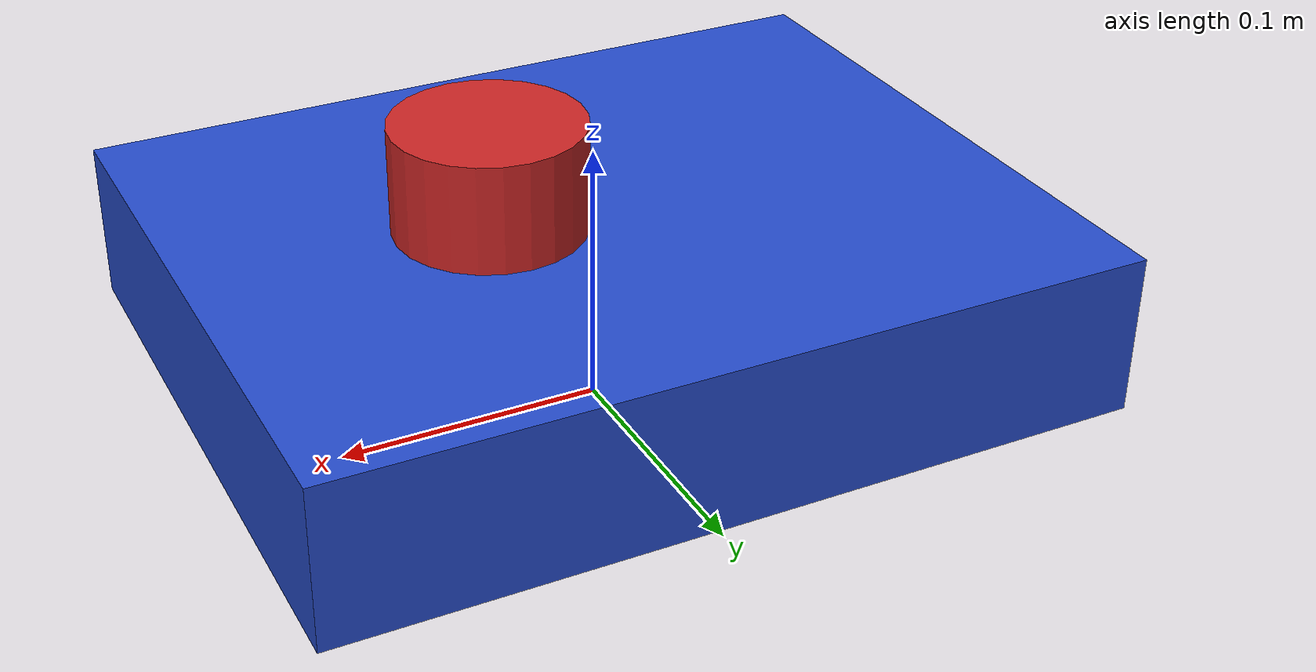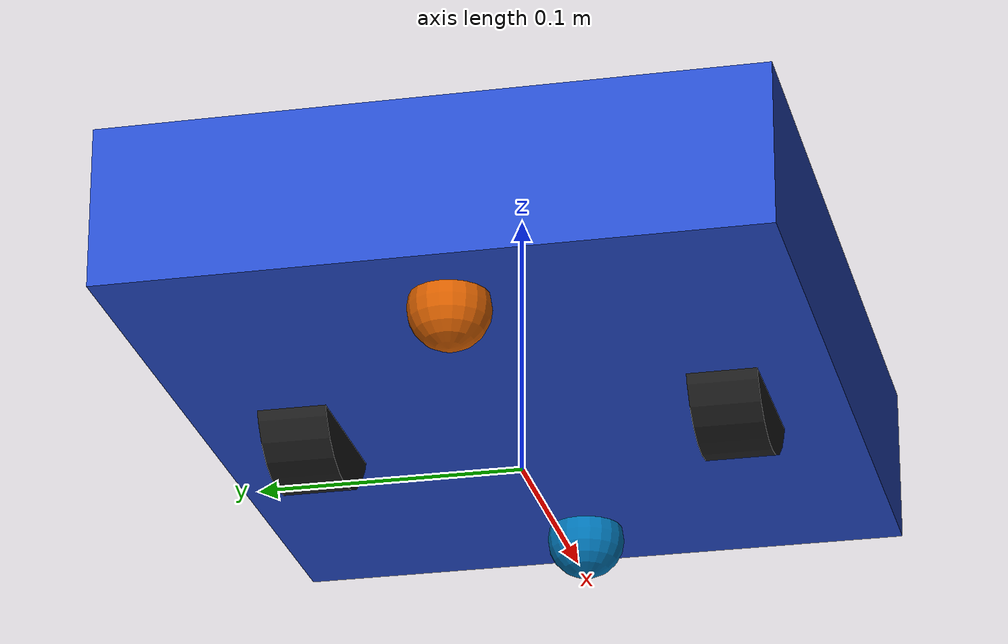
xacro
<?xml version="1.0"?>
<robot name="navbot" xmlns:xacro="http://www.ros.org/wiki/xacro">

  <!-- ① 模型本体：连杆 + 关节（仿真/真机共用） -->
  <xacro:include filename="$(find navbot_description)/urdf/navbot.xacro"/>

  <!-- ② 仿真挂载：差速插件 + 激光 + 关节状态（只有仿真需要）
          ★ 真机时把下面这一行注释掉即可，其余代码一字不动 -->
  <xacro:include filename="$(find navbot_description)/urdf/navbot.gazebo.xacro"/>

</robot>

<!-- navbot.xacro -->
<robot name="navbot" xmlns:xacro="http://www.ros.org/wiki/xacro">
    <link name="base_footprint"/>

    <joint name="base_joint" type="fixed">
        <parent link="base_footprint"/>
        <child link="base_link"/>
        <!-- base_footprint 贴地，base_link 再抬半个车厚 -->
        <origin xyz="0.0 0.0 0.05" rpy="0 0 0"/>
    </joint>

    <!-- 长方体惯量 -->
    <xacro:macro name="box_inertia" params="m x y z">
        <inertial>
        <origin xyz="0.0 0.0 0.0" rpy="0.0 0.0 0.0"/>
        <mass value="${m}"/>
        <inertia ixx="${m * (y*y + z*z) / 12}"
                 ixy="0.0" ixz="0.0" iyy="${m * (x*x + z*z) / 12}"
                 iyz="0.0" izz="${m * (x*x + y*y) / 12}"/>
        </inertial>
    </xacro:macro>

    <link name="base_link" >
            <visual>
            <geometry><box size="0.30 0.24 0.06"/></geometry>
        </visual>
        <collision>
            <geometry><box size="0.30 0.24 0.06"/></geometry>
        </collision>
        <xacro:box_inertia m="1.2" x="0.30" y="0.24" z="0.06"/>
    </link>

    <!-- 圆柱惯量，轴沿 Z -->
    <xacro:macro name="cyl_inertia" params="m r h">
        <inertial>
        <origin xyz="0.0 0.0 0.0" rpy="0.0 0.0 0.0"/>
        <mass value="${m}"/>
        <inertia ixx="${m * (3*r*r + h*h) / 12}"
                 ixy="0.0" ixz="0.0" iyy="${m * (3*r*r + h*h) / 12}"
                 iyz="0.0" izz="${m*r*r / 2}"/>
        </inertial>
    </xacro:macro>

    <xacro:macro name="wheel" params="prefix side" >
        <link name="${prefix}_wheel_link">
                <visual>
                    <!-- 以弧度为单位指定滚动、俯仰和偏航旋转。 -->
                    <!-- 格式：rpy="横滚 俯仰 偏航"（以空格分隔的值）
                    注意：旋转顺序为：偏航（Z轴）、俯仰（Y轴）、滚转（X轴） -->
                    <!-- 圆柱的默认轴沿 Z。但轮子要「横躺」着滚，轴得朝 Y。所以要绕 X 轴转 -90°。 -->
                    <origin rpy="-1.57079632679 0.0 0.0"/>
                    <geometry><cylinder radius="0.0325" length="0.026"/></geometry>
                </visual>
                <collision>
                    <origin rpy="-1.57079632679 0.0 0.0"/>
                    <geometry><cylinder radius="0.0325" length="0.026"/></geometry>
                </collision>
        <xacro:cyl_inertia m="0.15"  r="0.0325" h="0.026"/>
        </link>

        <joint name="${prefix}_wheel_joint" type="continuous">
                <parent link="base_link"/>
                <child link="${prefix}_wheel_link"/>
                <origin xyz="0.0 ${side * 0.16 / 2} -0.0175" rpy="0.0 0.0 0.0"/>
                <axis xyz="0.0 1.0 0.0"/>
                <limit effort="5.0" velocity="20.0"/>
        </joint>
    </xacro:macro>

    <xacro:wheel prefix="left" side="1"/>
    <xacro:wheel prefix="right" side="-1"/>

    <!-- 球惯量 -->
    <xacro:macro name="sphere_inertia" params="m r">
        <inertial>
        <origin xyz="0.0 0.0 0.0" rpy="0.0 0.0 0.0"/>
        <mass value="${m}"/>
        <inertia ixx="${2*m*r*r  / 5}"
                 ixy="0.0" ixz="0.0" iyy="${2*m*r*r  / 5}"
                 iyz="0.0" izz="${2*m*r*r  / 5}"/>
        </inertial>
    </xacro:macro>

    <!-- 前后万向球 -->
    <xacro:macro name="caster" params="prefix x_pos">
        <link name="${prefix}_caster_link">
                <visual>
                    <!-- 以弧度为单位指定滚动、俯仰和偏航旋转。 -->
                    <!-- 格式：rpy="横滚 俯仰 偏航"（以空格分隔的值）
                    注意：旋转顺序为：偏航（Z轴）、俯仰（Y轴）、滚转（X轴） -->
                    <!-- 球心离地 = 半径 0.015，那相对 base_link 的 z = ？前后位置 x_pos = ±0.115。 -->
                    <origin xyz="0.0 0.0 0.0" rpy="0.0 0.0 0.0"/>
                    <geometry><sphere radius="0.015" /></geometry>
                </visual>
                <collision>
                    <origin xyz="0.0 0.0 0.0" rpy="0.0 0.0 0.0"/>
                    <geometry><sphere radius="0.015"/></geometry>
                </collision>
        <xacro:sphere_inertia m="0.03" r="0.015"/>
        </link>

        <joint name="${prefix}_caster_joint" type="fixed">
                <parent link="base_link"/>
                <child link="${prefix}_caster_link"/>
                <origin xyz="${x_pos} 0 -0.035" rpy="0.0 0.0 0.0"/>
        </joint>
    </xacro:macro>

    <xacro:caster prefix="front" x_pos="0.115"/>
    <xacro:caster prefix="back"  x_pos="-0.115"/>

    <!-- 必须叫 laser_link（不是 lidar_link）：gazebo.xacro 里的雷达插件
         用 reference="laser_link" 挂接，改名会导致 TF 树断链 -->
    <link name="laser_link">

        <visual>
            <origin xyz="0.0 0.0 0.0"/>
            <geometry><cylinder radius="0.035" length="0.04"/></geometry>
        </visual>
        <collision>
            <origin xyz="0.0 0.0 0.0"/>
            <geometry><cylinder radius="0.035" length="0.04"/></geometry>
        </collision>

        <xacro:cyl_inertia m="0.10" r="0.035" h="0.04"/>
    </link>

    <joint name="laser_joint" type="fixed">
        <parent link="base_link"/>
        <child link="laser_link"/>
        <origin xyz="0.04 0 0.05" rpy="0 0 0"/>
    </joint>

</robot>
